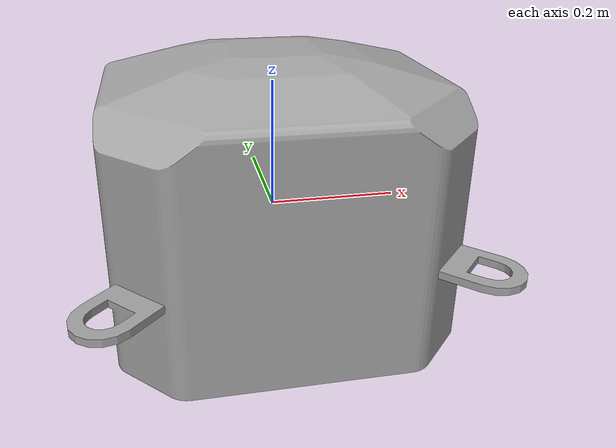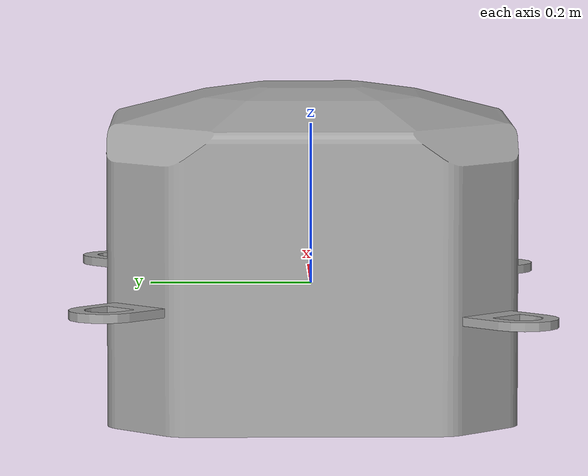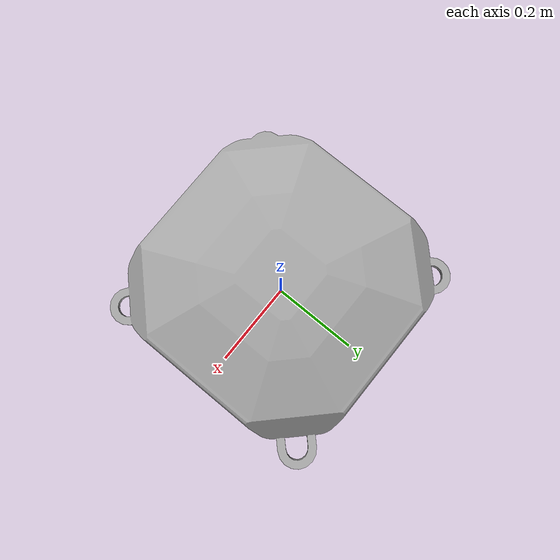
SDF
<?xml version="1.0"?>
<sdf version="1.5">
  <model name="dock_piece">
    <static>true</static>
    <pose>0 0 0.25 0 0 0</pose>
    <link name="link">
      <visual name="visual">
        <geometry>
           <mesh>
            <uri>file://dock_piece/mesh/dock_piece.dae</uri>
          </mesh>
        </geometry>
      </visual>
      <collision name="collision">
        <geometry>
           <mesh>
            <uri>file://dock_piece/mesh/dock_piece.dae</uri>
          </mesh>
        </geometry>
      </collision>
    </link>
  </model>
</sdf>
